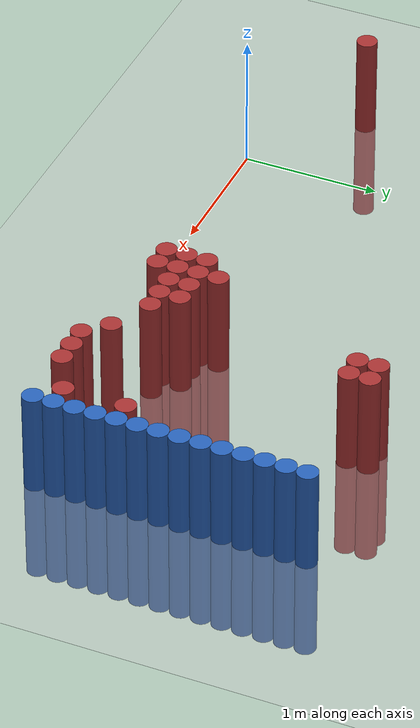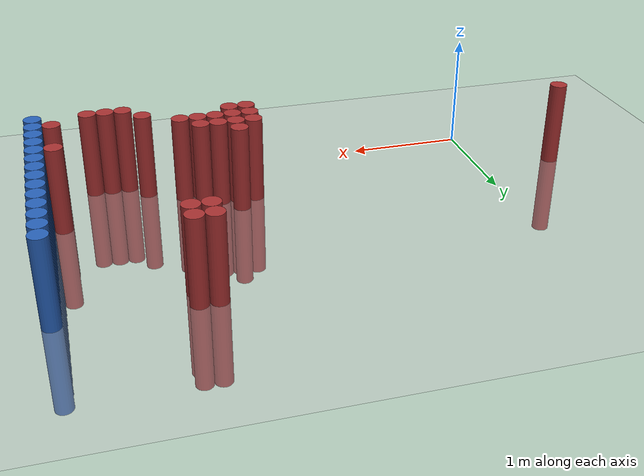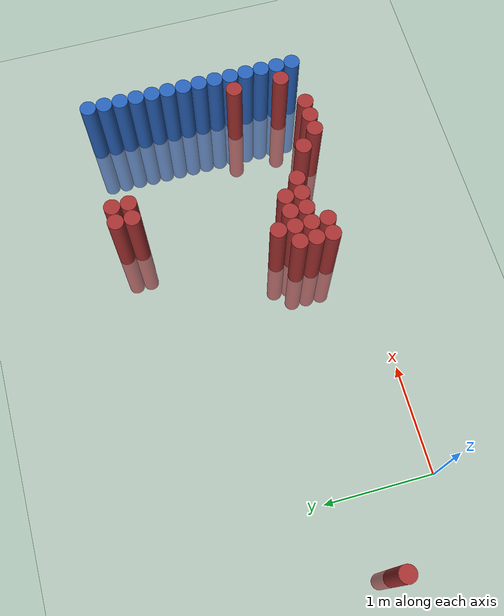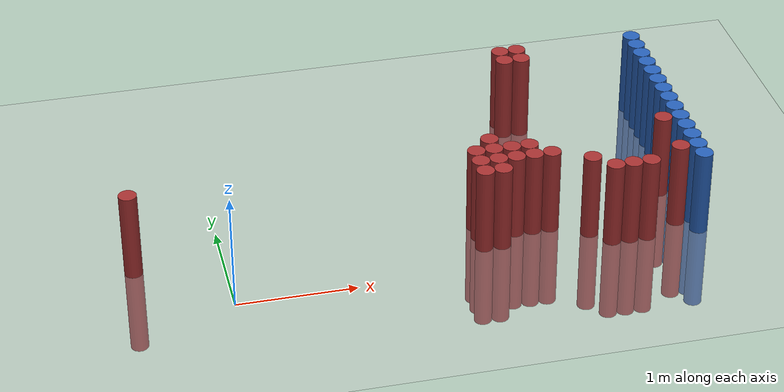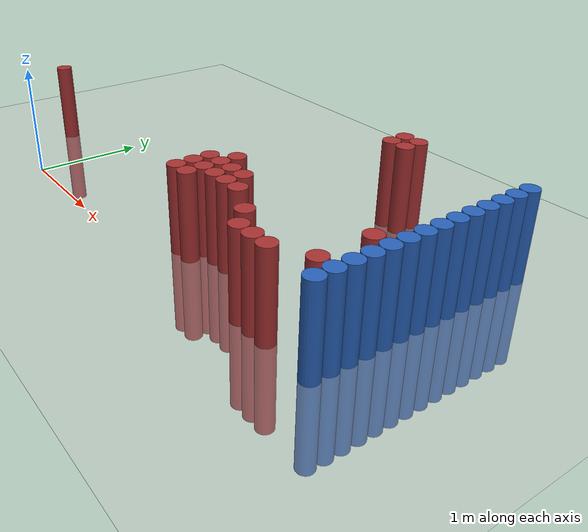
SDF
<sdf version="1.6">
 <world name="default">
  <model name="ground_plane">
   <static>1</static>
   <link name="link">
    <collision name="collision">
     <geometry><plane><normal>0 0 1</normal><size>100 100</size></plane></geometry>
     <surface><friction><ode><mu>100</mu><mu2>50</mu2></ode></friction></surface>
    </collision>
    <visual name="visual">
     <cast_shadows>0</cast_shadows>
     <geometry><plane><normal>0 0 1</normal><size>100 100</size></plane></geometry>
     <material>
      <script><uri>file://media/materials/scripts/gazebo.material</uri><name>Gazebo/Grey</name></script>
     </material>
    </visual>
   </link>
  </model>
  <model name="unit_cylinder_118">
   <static>1</static>
   <pose>3.925000 0.325000 0.000000 0.000000 0.000000 0.000000</pose>
   <link name="link">
    <inertial>
     <mass>1</mass>
     <inertia><ixx>0.145833</ixx><ixy>0</ixy><ixz>0</ixz><iyy>0.145833</iyy><iyz>0</iyz><izz>0.125</izz></inertia>
    </inertial>
    <collision name="collision">
     <geometry><cylinder><radius>0.075000</radius><length>1.5</length></cylinder></geometry>
    </collision>
    <visual name="visual">
     <geometry><cylinder><radius>0.075000</radius><length>1.5</length></cylinder></geometry>
     <material>
      <ambient>0.152000 0.379000 0.720000 1</ambient>
      <diffuse>0.152000 0.379000 0.720000 1</diffuse>
     </material>
     <material>
      <script><name>Gazebo/Grey</name><uri>file://media/materials/scripts/gazebo.material</uri></script>
     </material>
    </visual>
   </link>
  </model>
  <model name="unit_cylinder_120">
   <static>1</static>
   <pose>3.925000 0.475000 0.000000 0.000000 0.000000 0.000000</pose>
   <link name="link">
    <inertial>
     <mass>1</mass>
     <inertia><ixx>0.145833</ixx><ixy>0</ixy><ixz>0</ixz><iyy>0.145833</iyy><iyz>0</iyz><izz>0.125</izz></inertia>
    </inertial>
    <collision name="collision">
     <geometry><cylinder><radius>0.075000</radius><length>1.5</length></cylinder></geometry>
    </collision>
    <visual name="visual">
     <geometry><cylinder><radius>0.075000</radius><length>1.5</length></cylinder></geometry>
     <material>
      <ambient>0.152000 0.379000 0.720000 1</ambient>
      <diffuse>0.152000 0.379000 0.720000 1</diffuse>
     </material>
     <material>
      <script><name>Gazebo/Grey</name><uri>file://media/materials/scripts/gazebo.material</uri></script>
     </material>
    </visual>
   </link>
  </model>
  <model name="unit_cylinder_122">
   <static>1</static>
   <pose>3.925000 0.625000 0.000000 0.000000 0.000000 0.000000</pose>
   <link name="link">
    <inertial>
     <mass>1</mass>
     <inertia><ixx>0.145833</ixx><ixy>0</ixy><ixz>0</ixz><iyy>0.145833</iyy><iyz>0</iyz><izz>0.125</izz></inertia>
    </inertial>
    <collision name="collision">
     <geometry><cylinder><radius>0.075000</radius><length>1.5</length></cylinder></geometry>
    </collision>
    <visual name="visual">
     <geometry><cylinder><radius>0.075000</radius><length>1.5</length></cylinder></geometry>
     <material>
      <ambient>0.152000 0.379000 0.720000 1</ambient>
      <diffuse>0.152000 0.379000 0.720000 1</diffuse>
     </material>
     <material>
      <script><name>Gazebo/Grey</name><uri>file://media/materials/scripts/gazebo.material</uri></script>
     </material>
    </visual>
   </link>
  </model>
  <model name="unit_cylinder_124">
   <static>1</static>
   <pose>3.925000 0.775000 0.000000 0.000000 0.000000 0.000000</pose>
   <link name="link">
    <inertial>
     <mass>1</mass>
     <inertia><ixx>0.145833</ixx><ixy>0</ixy><ixz>0</ixz><iyy>0.145833</iyy><iyz>0</iyz><izz>0.125</izz></inertia>
    </inertial>
    <collision name="collision">
     <geometry><cylinder><radius>0.075000</radius><length>1.5</length></cylinder></geometry>
    </collision>
    <visual name="visual">
     <geometry><cylinder><radius>0.075000</radius><length>1.5</length></cylinder></geometry>
     <material>
      <ambient>0.152000 0.379000 0.720000 1</ambient>
      <diffuse>0.152000 0.379000 0.720000 1</diffuse>
     </material>
     <material>
      <script><name>Gazebo/Grey</name><uri>file://media/materials/scripts/gazebo.material</uri></script>
     </material>
    </visual>
   </link>
  </model>
  <model name="unit_cylinder_126">
   <static>1</static>
   <pose>3.925000 0.925000 0.000000 0.000000 0.000000 0.000000</pose>
   <link name="link">
    <inertial>
     <mass>1</mass>
     <inertia><ixx>0.145833</ixx><ixy>0</ixy><ixz>0</ixz><iyy>0.145833</iyy><iyz>0</iyz><izz>0.125</izz></inertia>
    </inertial>
    <collision name="collision">
     <geometry><cylinder><radius>0.075000</radius><length>1.5</length></cylinder></geometry>
    </collision>
    <visual name="visual">
     <geometry><cylinder><radius>0.075000</radius><length>1.5</length></cylinder></geometry>
     <material>
      <ambient>0.152000 0.379000 0.720000 1</ambient>
      <diffuse>0.152000 0.379000 0.720000 1</diffuse>
     </material>
     <material>
      <script><name>Gazebo/Grey</name><uri>file://media/materials/scripts/gazebo.material</uri></script>
     </material>
    </visual>
   </link>
  </model>
  <model name="unit_cylinder_128">
   <static>1</static>
   <pose>3.925000 1.075000 0.000000 0.000000 0.000000 0.000000</pose>
   <link name="link">
    <inertial>
     <mass>1</mass>
     <inertia><ixx>0.145833</ixx><ixy>0</ixy><ixz>0</ixz><iyy>0.145833</iyy><iyz>0</iyz><izz>0.125</izz></inertia>
    </inertial>
    <collision name="collision">
     <geometry><cylinder><radius>0.075000</radius><length>1.5</length></cylinder></geometry>
    </collision>
    <visual name="visual">
     <geometry><cylinder><radius>0.075000</radius><length>1.5</length></cylinder></geometry>
     <material>
      <ambient>0.152000 0.379000 0.720000 1</ambient>
      <diffuse>0.152000 0.379000 0.720000 1</diffuse>
     </material>
     <material>
      <script><name>Gazebo/Grey</name><uri>file://media/materials/scripts/gazebo.material</uri></script>
     </material>
    </visual>
   </link>
  </model>
  <model name="unit_cylinder_130">
   <static>1</static>
   <pose>3.925000 1.225000 0.000000 0.000000 0.000000 0.000000</pose>
   <link name="link">
    <inertial>
     <mass>1</mass>
     <inertia><ixx>0.145833</ixx><ixy>0</ixy><ixz>0</ixz><iyy>0.145833</iyy><iyz>0</iyz><izz>0.125</izz></inertia>
    </inertial>
    <collision name="collision">
     <geometry><cylinder><radius>0.075000</radius><length>1.5</length></cylinder></geometry>
    </collision>
    <visual name="visual">
     <geometry><cylinder><radius>0.075000</radius><length>1.5</length></cylinder></geometry>
     <material>
      <ambient>0.152000 0.379000 0.720000 1</ambient>
      <diffuse>0.152000 0.379000 0.720000 1</diffuse>
     </material>
     <material>
      <script><name>Gazebo/Grey</name><uri>file://media/materials/scripts/gazebo.material</uri></script>
     </material>
    </visual>
   </link>
  </model>
  <model name="unit_cylinder_132">
   <static>1</static>
   <pose>3.925000 1.375000 0.000000 0.000000 0.000000 0.000000</pose>
   <link name="link">
    <inertial>
     <mass>1</mass>
     <inertia><ixx>0.145833</ixx><ixy>0</ixy><ixz>0</ixz><iyy>0.145833</iyy><iyz>0</iyz><izz>0.125</izz></inertia>
    </inertial>
    <collision name="collision">
     <geometry><cylinder><radius>0.075000</radius><length>1.5</length></cylinder></geometry>
    </collision>
    <visual name="visual">
     <geometry><cylinder><radius>0.075000</radius><length>1.5</length></cylinder></geometry>
     <material>
      <ambient>0.152000 0.379000 0.720000 1</ambient>
      <diffuse>0.152000 0.379000 0.720000 1</diffuse>
     </material>
     <material>
      <script><name>Gazebo/Grey</name><uri>file://media/materials/scripts/gazebo.material</uri></script>
     </material>
    </visual>
   </link>
  </model>
  <model name="unit_cylinder_134">
   <static>1</static>
   <pose>3.925000 1.525000 0.000000 0.000000 0.000000 0.000000</pose>
   <link name="link">
    <inertial>
     <mass>1</mass>
     <inertia><ixx>0.145833</ixx><ixy>0</ixy><ixz>0</ixz><iyy>0.145833</iyy><iyz>0</iyz><izz>0.125</izz></inertia>
    </inertial>
    <collision name="collision">
     <geometry><cylinder><radius>0.075000</radius><length>1.5</length></cylinder></geometry>
    </collision>
    <visual name="visual">
     <geometry><cylinder><radius>0.075000</radius><length>1.5</length></cylinder></geometry>
     <material>
      <ambient>0.152000 0.379000 0.720000 1</ambient>
      <diffuse>0.152000 0.379000 0.720000 1</diffuse>
     </material>
     <material>
      <script><name>Gazebo/Grey</name><uri>file://media/materials/scripts/gazebo.material</uri></script>
     </material>
    </visual>
   </link>
  </model>
  <model name="unit_cylinder_136">
   <static>1</static>
   <pose>3.925000 1.675000 0.000000 0.000000 0.000000 0.000000</pose>
   <link name="link">
    <inertial>
     <mass>1</mass>
     <inertia><ixx>0.145833</ixx><ixy>0</ixy><ixz>0</ixz><iyy>0.145833</iyy><iyz>0</iyz><izz>0.125</izz></inertia>
    </inertial>
    <collision name="collision">
     <geometry><cylinder><radius>0.075000</radius><length>1.5</length></cylinder></geometry>
    </collision>
    <visual name="visual">
     <geometry><cylinder><radius>0.075000</radius><length>1.5</length></cylinder></geometry>
     <material>
      <ambient>0.152000 0.379000 0.720000 1</ambient>
      <diffuse>0.152000 0.379000 0.720000 1</diffuse>
     </material>
     <material>
      <script><name>Gazebo/Grey</name><uri>file://media/materials/scripts/gazebo.material</uri></script>
     </material>
    </visual>
   </link>
  </model>
  <model name="unit_cylinder_138">
   <static>1</static>
   <pose>3.925000 1.825000 0.000000 0.000000 0.000000 0.000000</pose>
   <link name="link">
    <inertial>
     <mass>1</mass>
     <inertia><ixx>0.145833</ixx><ixy>0</ixy><ixz>0</ixz><iyy>0.145833</iyy><iyz>0</iyz><izz>0.125</izz></inertia>
    </inertial>
    <collision name="collision">
     <geometry><cylinder><radius>0.075000</radius><length>1.5</length></cylinder></geometry>
    </collision>
    <visual name="visual">
     <geometry><cylinder><radius>0.075000</radius><length>1.5</length></cylinder></geometry>
     <material>
      <ambient>0.152000 0.379000 0.720000 1</ambient>
      <diffuse>0.152000 0.379000 0.720000 1</diffuse>
     </material>
     <material>
      <script><name>Gazebo/Grey</name><uri>file://media/materials/scripts/gazebo.material</uri></script>
     </material>
    </visual>
   </link>
  </model>
  <model name="unit_cylinder_140">
   <static>1</static>
   <pose>3.925000 1.975000 0.000000 0.000000 0.000000 0.000000</pose>
   <link name="link">
    <inertial>
     <mass>1</mass>
     <inertia><ixx>0.145833</ixx><ixy>0</ixy><ixz>0</ixz><iyy>0.145833</iyy><iyz>0</iyz><izz>0.125</izz></inertia>
    </inertial>
    <collision name="collision">
     <geometry><cylinder><radius>0.075000</radius><length>1.5</length></cylinder></geometry>
    </collision>
    <visual name="visual">
     <geometry><cylinder><radius>0.075000</radius><length>1.5</length></cylinder></geometry>
     <material>
      <ambient>0.152000 0.379000 0.720000 1</ambient>
      <diffuse>0.152000 0.379000 0.720000 1</diffuse>
     </material>
     <material>
      <script><name>Gazebo/Grey</name><uri>file://media/materials/scripts/gazebo.material</uri></script>
     </material>
    </visual>
   </link>
  </model>
  <model name="unit_cylinder_142">
   <static>1</static>
   <pose>3.925000 2.125000 0.000000 0.000000 0.000000 0.000000</pose>
   <link name="link">
    <inertial>
     <mass>1</mass>
     <inertia><ixx>0.145833</ixx><ixy>0</ixy><ixz>0</ixz><iyy>0.145833</iyy><iyz>0</iyz><izz>0.125</izz></inertia>
    </inertial>
    <collision name="collision">
     <geometry><cylinder><radius>0.075000</radius><length>1.5</length></cylinder></geometry>
    </collision>
    <visual name="visual">
     <geometry><cylinder><radius>0.075000</radius><length>1.5</length></cylinder></geometry>
     <material>
      <ambient>0.152000 0.379000 0.720000 1</ambient>
      <diffuse>0.152000 0.379000 0.720000 1</diffuse>
     </material>
     <material>
      <script><name>Gazebo/Grey</name><uri>file://media/materials/scripts/gazebo.material</uri></script>
     </material>
    </visual>
   </link>
  </model>
  <model name="unit_cylinder_303">
   <static>1</static>
   <pose>-0.725000 0.625000 0.000000 0.000000 0.000000 0.000000</pose>
   <link name="link">
    <inertial>
     <mass>1</mass>
     <inertia><ixx>0.145833</ixx><ixy>0</ixy><ixz>0</ixz><iyy>0.145833</iyy><iyz>0</iyz><izz>0.125</izz></inertia>
    </inertial>
    <collision name="collision">
     <geometry><cylinder><radius>0.075000</radius><length>1.5</length></cylinder></geometry>
    </collision>
    <visual name="visual">
     <geometry><cylinder><radius>0.075000</radius><length>1.5</length></cylinder></geometry>
     <material>
      <ambient>0.648000 0.192000 0.192000 1</ambient>
      <diffuse>0.648000 0.192000 0.192000 1</diffuse>
     </material>
     <material>
      <script><name>Gazebo/Grey</name><uri>file://media/materials/scripts/gazebo.material</uri></script>
     </material>
    </visual>
   </link>
  </model>
  <model name="unit_cylinder_335">
   <static>1</static>
   <pose>2.125000 0.325000 0.000000 0.000000 0.000000 0.000000</pose>
   <link name="link">
    <inertial>
     <mass>1</mass>
     <inertia><ixx>0.145833</ixx><ixy>0</ixy><ixz>0</ixz><iyy>0.145833</iyy><iyz>0</iyz><izz>0.125</izz></inertia>
    </inertial>
    <collision name="collision">
     <geometry><cylinder><radius>0.075000</radius><length>1.5</length></cylinder></geometry>
    </collision>
    <visual name="visual">
     <geometry><cylinder><radius>0.075000</radius><length>1.5</length></cylinder></geometry>
     <material>
      <ambient>0.648000 0.192000 0.192000 1</ambient>
      <diffuse>0.648000 0.192000 0.192000 1</diffuse>
     </material>
     <material>
      <script><name>Gazebo/Grey</name><uri>file://media/materials/scripts/gazebo.material</uri></script>
     </material>
    </visual>
   </link>
  </model>
  <model name="unit_cylinder_336">
   <static>1</static>
   <pose>2.125000 0.475000 0.000000 0.000000 0.000000 0.000000</pose>
   <link name="link">
    <inertial>
     <mass>1</mass>
     <inertia><ixx>0.145833</ixx><ixy>0</ixy><ixz>0</ixz><iyy>0.145833</iyy><iyz>0</iyz><izz>0.125</izz></inertia>
    </inertial>
    <collision name="collision">
     <geometry><cylinder><radius>0.075000</radius><length>1.5</length></cylinder></geometry>
    </collision>
    <visual name="visual">
     <geometry><cylinder><radius>0.075000</radius><length>1.5</length></cylinder></geometry>
     <material>
      <ambient>0.648000 0.192000 0.192000 1</ambient>
      <diffuse>0.648000 0.192000 0.192000 1</diffuse>
     </material>
     <material>
      <script><name>Gazebo/Grey</name><uri>file://media/materials/scripts/gazebo.material</uri></script>
     </material>
    </visual>
   </link>
  </model>
  <model name="unit_cylinder_337">
   <static>1</static>
   <pose>2.125000 0.625000 0.000000 0.000000 0.000000 0.000000</pose>
   <link name="link">
    <inertial>
     <mass>1</mass>
     <inertia><ixx>0.145833</ixx><ixy>0</ixy><ixz>0</ixz><iyy>0.145833</iyy><iyz>0</iyz><izz>0.125</izz></inertia>
    </inertial>
    <collision name="collision">
     <geometry><cylinder><radius>0.075000</radius><length>1.5</length></cylinder></geometry>
    </collision>
    <visual name="visual">
     <geometry><cylinder><radius>0.075000</radius><length>1.5</length></cylinder></geometry>
     <material>
      <ambient>0.648000 0.192000 0.192000 1</ambient>
      <diffuse>0.648000 0.192000 0.192000 1</diffuse>
     </material>
     <material>
      <script><name>Gazebo/Grey</name><uri>file://media/materials/scripts/gazebo.material</uri></script>
     </material>
    </visual>
   </link>
  </model>
  <model name="unit_cylinder_344">
   <static>1</static>
   <pose>2.275000 0.325000 0.000000 0.000000 0.000000 0.000000</pose>
   <link name="link">
    <inertial>
     <mass>1</mass>
     <inertia><ixx>0.145833</ixx><ixy>0</ixy><ixz>0</ixz><iyy>0.145833</iyy><iyz>0</iyz><izz>0.125</izz></inertia>
    </inertial>
    <collision name="collision">
     <geometry><cylinder><radius>0.075000</radius><length>1.5</length></cylinder></geometry>
    </collision>
    <visual name="visual">
     <geometry><cylinder><radius>0.075000</radius><length>1.5</length></cylinder></geometry>
     <material>
      <ambient>0.648000 0.192000 0.192000 1</ambient>
      <diffuse>0.648000 0.192000 0.192000 1</diffuse>
     </material>
     <material>
      <script><name>Gazebo/Grey</name><uri>file://media/materials/scripts/gazebo.material</uri></script>
     </material>
    </visual>
   </link>
  </model>
  <model name="unit_cylinder_345">
   <static>1</static>
   <pose>2.275000 0.475000 0.000000 0.000000 0.000000 0.000000</pose>
   <link name="link">
    <inertial>
     <mass>1</mass>
     <inertia><ixx>0.145833</ixx><ixy>0</ixy><ixz>0</ixz><iyy>0.145833</iyy><iyz>0</iyz><izz>0.125</izz></inertia>
    </inertial>
    <collision name="collision">
     <geometry><cylinder><radius>0.075000</radius><length>1.5</length></cylinder></geometry>
    </collision>
    <visual name="visual">
     <geometry><cylinder><radius>0.075000</radius><length>1.5</length></cylinder></geometry>
     <material>
      <ambient>0.648000 0.192000 0.192000 1</ambient>
      <diffuse>0.648000 0.192000 0.192000 1</diffuse>
     </material>
     <material>
      <script><name>Gazebo/Grey</name><uri>file://media/materials/scripts/gazebo.material</uri></script>
     </material>
    </visual>
   </link>
  </model>
  <model name="unit_cylinder_346">
   <static>1</static>
   <pose>2.275000 0.625000 0.000000 0.000000 0.000000 0.000000</pose>
   <link name="link">
    <inertial>
     <mass>1</mass>
     <inertia><ixx>0.145833</ixx><ixy>0</ixy><ixz>0</ixz><iyy>0.145833</iyy><iyz>0</iyz><izz>0.125</izz></inertia>
    </inertial>
    <collision name="collision">
     <geometry><cylinder><radius>0.075000</radius><length>1.5</length></cylinder></geometry>
    </collision>
    <visual name="visual">
     <geometry><cylinder><radius>0.075000</radius><length>1.5</length></cylinder></geometry>
     <material>
      <ambient>0.648000 0.192000 0.192000 1</ambient>
      <diffuse>0.648000 0.192000 0.192000 1</diffuse>
     </material>
     <material>
      <script><name>Gazebo/Grey</name><uri>file://media/materials/scripts/gazebo.material</uri></script>
     </material>
    </visual>
   </link>
  </model>
  <model name="unit_cylinder_347">
   <static>1</static>
   <pose>2.275000 0.775000 0.000000 0.000000 0.000000 0.000000</pose>
   <link name="link">
    <inertial>
     <mass>1</mass>
     <inertia><ixx>0.145833</ixx><ixy>0</ixy><ixz>0</ixz><iyy>0.145833</iyy><iyz>0</iyz><izz>0.125</izz></inertia>
    </inertial>
    <collision name="collision">
     <geometry><cylinder><radius>0.075000</radius><length>1.5</length></cylinder></geometry>
    </collision>
    <visual name="visual">
     <geometry><cylinder><radius>0.075000</radius><length>1.5</length></cylinder></geometry>
     <material>
      <ambient>0.648000 0.192000 0.192000 1</ambient>
      <diffuse>0.648000 0.192000 0.192000 1</diffuse>
     </material>
     <material>
      <script><name>Gazebo/Grey</name><uri>file://media/materials/scripts/gazebo.material</uri></script>
     </material>
    </visual>
   </link>
  </model>
  <model name="unit_cylinder_353">
   <static>1</static>
   <pose>2.425000 0.475000 0.000000 0.000000 0.000000 0.000000</pose>
   <link name="link">
    <inertial>
     <mass>1</mass>
     <inertia><ixx>0.145833</ixx><ixy>0</ixy><ixz>0</ixz><iyy>0.145833</iyy><iyz>0</iyz><izz>0.125</izz></inertia>
    </inertial>
    <collision name="collision">
     <geometry><cylinder><radius>0.075000</radius><length>1.5</length></cylinder></geometry>
    </collision>
    <visual name="visual">
     <geometry><cylinder><radius>0.075000</radius><length>1.5</length></cylinder></geometry>
     <material>
      <ambient>0.648000 0.192000 0.192000 1</ambient>
      <diffuse>0.648000 0.192000 0.192000 1</diffuse>
     </material>
     <material>
      <script><name>Gazebo/Grey</name><uri>file://media/materials/scripts/gazebo.material</uri></script>
     </material>
    </visual>
   </link>
  </model>
  <model name="unit_cylinder_354">
   <static>1</static>
   <pose>2.425000 0.625000 0.000000 0.000000 0.000000 0.000000</pose>
   <link name="link">
    <inertial>
     <mass>1</mass>
     <inertia><ixx>0.145833</ixx><ixy>0</ixy><ixz>0</ixz><iyy>0.145833</iyy><iyz>0</iyz><izz>0.125</izz></inertia>
    </inertial>
    <collision name="collision">
     <geometry><cylinder><radius>0.075000</radius><length>1.5</length></cylinder></geometry>
    </collision>
    <visual name="visual">
     <geometry><cylinder><radius>0.075000</radius><length>1.5</length></cylinder></geometry>
     <material>
      <ambient>0.648000 0.192000 0.192000 1</ambient>
      <diffuse>0.648000 0.192000 0.192000 1</diffuse>
     </material>
     <material>
      <script><name>Gazebo/Grey</name><uri>file://media/materials/scripts/gazebo.material</uri></script>
     </material>
    </visual>
   </link>
  </model>
  <model name="unit_cylinder_356">
   <static>1</static>
   <pose>2.575000 0.475000 0.000000 0.000000 0.000000 0.000000</pose>
   <link name="link">
    <inertial>
     <mass>1</mass>
     <inertia><ixx>0.145833</ixx><ixy>0</ixy><ixz>0</ixz><iyy>0.145833</iyy><iyz>0</iyz><izz>0.125</izz></inertia>
    </inertial>
    <collision name="collision">
     <geometry><cylinder><radius>0.075000</radius><length>1.5</length></cylinder></geometry>
    </collision>
    <visual name="visual">
     <geometry><cylinder><radius>0.075000</radius><length>1.5</length></cylinder></geometry>
     <material>
      <ambient>0.648000 0.192000 0.192000 1</ambient>
      <diffuse>0.648000 0.192000 0.192000 1</diffuse>
     </material>
     <material>
      <script><name>Gazebo/Grey</name><uri>file://media/materials/scripts/gazebo.material</uri></script>
     </material>
    </visual>
   </link>
  </model>
  <model name="unit_cylinder_357">
   <static>1</static>
   <pose>2.575000 0.625000 0.000000 0.000000 0.000000 0.000000</pose>
   <link name="link">
    <inertial>
     <mass>1</mass>
     <inertia><ixx>0.145833</ixx><ixy>0</ixy><ixz>0</ixz><iyy>0.145833</iyy><iyz>0</iyz><izz>0.125</izz></inertia>
    </inertial>
    <collision name="collision">
     <geometry><cylinder><radius>0.075000</radius><length>1.5</length></cylinder></geometry>
    </collision>
    <visual name="visual">
     <geometry><cylinder><radius>0.075000</radius><length>1.5</length></cylinder></geometry>
     <material>
      <ambient>0.648000 0.192000 0.192000 1</ambient>
      <diffuse>0.648000 0.192000 0.192000 1</diffuse>
     </material>
     <material>
      <script><name>Gazebo/Grey</name><uri>file://media/materials/scripts/gazebo.material</uri></script>
     </material>
    </visual>
   </link>
  </model>
  <model name="unit_cylinder_360">
   <static>1</static>
   <pose>2.725000 0.475000 0.000000 0.000000 0.000000 0.000000</pose>
   <link name="link">
    <inertial>
     <mass>1</mass>
     <inertia><ixx>0.145833</ixx><ixy>0</ixy><ixz>0</ixz><iyy>0.145833</iyy><iyz>0</iyz><izz>0.125</izz></inertia>
    </inertial>
    <collision name="collision">
     <geometry><cylinder><radius>0.075000</radius><length>1.5</length></cylinder></geometry>
    </collision>
    <visual name="visual">
     <geometry><cylinder><radius>0.075000</radius><length>1.5</length></cylinder></geometry>
     <material>
      <ambient>0.648000 0.192000 0.192000 1</ambient>
      <diffuse>0.648000 0.192000 0.192000 1</diffuse>
     </material>
     <material>
      <script><name>Gazebo/Grey</name><uri>file://media/materials/scripts/gazebo.material</uri></script>
     </material>
    </visual>
   </link>
  </model>
  <model name="unit_cylinder_361">
   <static>1</static>
   <pose>2.725000 1.975000 0.000000 0.000000 0.000000 0.000000</pose>
   <link name="link">
    <inertial>
     <mass>1</mass>
     <inertia><ixx>0.145833</ixx><ixy>0</ixy><ixz>0</ixz><iyy>0.145833</iyy><iyz>0</iyz><izz>0.125</izz></inertia>
    </inertial>
    <collision name="collision">
     <geometry><cylinder><radius>0.075000</radius><length>1.5</length></cylinder></geometry>
    </collision>
    <visual name="visual">
     <geometry><cylinder><radius>0.075000</radius><length>1.5</length></cylinder></geometry>
     <material>
      <ambient>0.648000 0.192000 0.192000 1</ambient>
      <diffuse>0.648000 0.192000 0.192000 1</diffuse>
     </material>
     <material>
      <script><name>Gazebo/Grey</name><uri>file://media/materials/scripts/gazebo.material</uri></script>
     </material>
    </visual>
   </link>
  </model>
  <model name="unit_cylinder_362">
   <static>1</static>
   <pose>2.725000 2.125000 0.000000 0.000000 0.000000 0.000000</pose>
   <link name="link">
    <inertial>
     <mass>1</mass>
     <inertia><ixx>0.145833</ixx><ixy>0</ixy><ixz>0</ixz><iyy>0.145833</iyy><iyz>0</iyz><izz>0.125</izz></inertia>
    </inertial>
    <collision name="collision">
     <geometry><cylinder><radius>0.075000</radius><length>1.5</length></cylinder></geometry>
    </collision>
    <visual name="visual">
     <geometry><cylinder><radius>0.075000</radius><length>1.5</length></cylinder></geometry>
     <material>
      <ambient>0.648000 0.192000 0.192000 1</ambient>
      <diffuse>0.648000 0.192000 0.192000 1</diffuse>
     </material>
     <material>
      <script><name>Gazebo/Grey</name><uri>file://media/materials/scripts/gazebo.material</uri></script>
     </material>
    </visual>
   </link>
  </model>
  <model name="unit_cylinder_365">
   <static>1</static>
   <pose>2.875000 1.975000 0.000000 0.000000 0.000000 0.000000</pose>
   <link name="link">
    <inertial>
     <mass>1</mass>
     <inertia><ixx>0.145833</ixx><ixy>0</ixy><ixz>0</ixz><iyy>0.145833</iyy><iyz>0</iyz><izz>0.125</izz></inertia>
    </inertial>
    <collision name="collision">
     <geometry><cylinder><radius>0.075000</radius><length>1.5</length></cylinder></geometry>
    </collision>
    <visual name="visual">
     <geometry><cylinder><radius>0.075000</radius><length>1.5</length></cylinder></geometry>
     <material>
      <ambient>0.648000 0.192000 0.192000 1</ambient>
      <diffuse>0.648000 0.192000 0.192000 1</diffuse>
     </material>
     <material>
      <script><name>Gazebo/Grey</name><uri>file://media/materials/scripts/gazebo.material</uri></script>
     </material>
    </visual>
   </link>
  </model>
  <model name="unit_cylinder_366">
   <static>1</static>
   <pose>2.875000 2.125000 0.000000 0.000000 0.000000 0.000000</pose>
   <link name="link">
    <inertial>
     <mass>1</mass>
     <inertia><ixx>0.145833</ixx><ixy>0</ixy><ixz>0</ixz><iyy>0.145833</iyy><iyz>0</iyz><izz>0.125</izz></inertia>
    </inertial>
    <collision name="collision">
     <geometry><cylinder><radius>0.075000</radius><length>1.5</length></cylinder></geometry>
    </collision>
    <visual name="visual">
     <geometry><cylinder><radius>0.075000</radius><length>1.5</length></cylinder></geometry>
     <material>
      <ambient>0.648000 0.192000 0.192000 1</ambient>
      <diffuse>0.648000 0.192000 0.192000 1</diffuse>
     </material>
     <material>
      <script><name>Gazebo/Grey</name><uri>file://media/materials/scripts/gazebo.material</uri></script>
     </material>
    </visual>
   </link>
  </model>
  <model name="unit_cylinder_369">
   <static>1</static>
   <pose>3.025000 0.325000 0.000000 0.000000 0.000000 0.000000</pose>
   <link name="link">
    <inertial>
     <mass>1</mass>
     <inertia><ixx>0.145833</ixx><ixy>0</ixy><ixz>0</ixz><iyy>0.145833</iyy><iyz>0</iyz><izz>0.125</izz></inertia>
    </inertial>
    <collision name="collision">
     <geometry><cylinder><radius>0.075000</radius><length>1.5</length></cylinder></geometry>
    </collision>
    <visual name="visual">
     <geometry><cylinder><radius>0.075000</radius><length>1.5</length></cylinder></geometry>
     <material>
      <ambient>0.648000 0.192000 0.192000 1</ambient>
      <diffuse>0.648000 0.192000 0.192000 1</diffuse>
     </material>
     <material>
      <script><name>Gazebo/Grey</name><uri>file://media/materials/scripts/gazebo.material</uri></script>
     </material>
    </visual>
   </link>
  </model>
  <model name="unit_cylinder_372">
   <static>1</static>
   <pose>3.175000 0.175000 0.000000 0.000000 0.000000 0.000000</pose>
   <link name="link">
    <inertial>
     <mass>1</mass>
     <inertia><ixx>0.145833</ixx><ixy>0</ixy><ixz>0</ixz><iyy>0.145833</iyy><iyz>0</iyz><izz>0.125</izz></inertia>
    </inertial>
    <collision name="collision">
     <geometry><cylinder><radius>0.075000</radius><length>1.5</length></cylinder></geometry>
    </collision>
    <visual name="visual">
     <geometry><cylinder><radius>0.075000</radius><length>1.5</length></cylinder></geometry>
     <material>
      <ambient>0.648000 0.192000 0.192000 1</ambient>
      <diffuse>0.648000 0.192000 0.192000 1</diffuse>
     </material>
     <material>
      <script><name>Gazebo/Grey</name><uri>file://media/materials/scripts/gazebo.material</uri></script>
     </material>
    </visual>
   </link>
  </model>
  <model name="unit_cylinder_378">
   <static>1</static>
   <pose>3.325000 0.175000 0.000000 0.000000 0.000000 0.000000</pose>
   <link name="link">
    <inertial>
     <mass>1</mass>
     <inertia><ixx>0.145833</ixx><ixy>0</ixy><ixz>0</ixz><iyy>0.145833</iyy><iyz>0</iyz><izz>0.125</izz></inertia>
    </inertial>
    <collision name="collision">
     <geometry><cylinder><radius>0.075000</radius><length>1.5</length></cylinder></geometry>
    </collision>
    <visual name="visual">
     <geometry><cylinder><radius>0.075000</radius><length>1.5</length></cylinder></geometry>
     <material>
      <ambient>0.648000 0.192000 0.192000 1</ambient>
      <diffuse>0.648000 0.192000 0.192000 1</diffuse>
     </material>
     <material>
      <script><name>Gazebo/Grey</name><uri>file://media/materials/scripts/gazebo.material</uri></script>
     </material>
    </visual>
   </link>
  </model>
  <model name="unit_cylinder_383">
   <static>1</static>
   <pose>3.475000 0.175000 0.000000 0.000000 0.000000 0.000000</pose>
   <link name="link">
    <inertial>
     <mass>1</mass>
     <inertia><ixx>0.145833</ixx><ixy>0</ixy><ixz>0</ixz><iyy>0.145833</iyy><iyz>0</iyz><izz>0.125</izz></inertia>
    </inertial>
    <collision name="collision">
     <geometry><cylinder><radius>0.075000</radius><length>1.5</length></cylinder></geometry>
    </collision>
    <visual name="visual">
     <geometry><cylinder><radius>0.075000</radius><length>1.5</length></cylinder></geometry>
     <material>
      <ambient>0.648000 0.192000 0.192000 1</ambient>
      <diffuse>0.648000 0.192000 0.192000 1</diffuse>
     </material>
     <material>
      <script><name>Gazebo/Grey</name><uri>file://media/materials/scripts/gazebo.material</uri></script>
     </material>
    </visual>
   </link>
  </model>
  <model name="unit_cylinder_389">
   <static>1</static>
   <pose>3.775000 0.325000 0.000000 0.000000 0.000000 0.000000</pose>
   <link name="link">
    <inertial>
     <mass>1</mass>
     <inertia><ixx>0.145833</ixx><ixy>0</ixy><ixz>0</ixz><iyy>0.145833</iyy><iyz>0</iyz><izz>0.125</izz></inertia>
    </inertial>
    <collision name="collision">
     <geometry><cylinder><radius>0.075000</radius><length>1.5</length></cylinder></geometry>
    </collision>
    <visual name="visual">
     <geometry><cylinder><radius>0.075000</radius><length>1.5</length></cylinder></geometry>
     <material>
      <ambient>0.648000 0.192000 0.192000 1</ambient>
      <diffuse>0.648000 0.192000 0.192000 1</diffuse>
     </material>
     <material>
      <script><name>Gazebo/Grey</name><uri>file://media/materials/scripts/gazebo.material</uri></script>
     </material>
    </visual>
   </link>
  </model>
  <model name="unit_cylinder_390">
   <static>1</static>
   <pose>3.775000 0.775000 0.000000 0.000000 0.000000 0.000000</pose>
   <link name="link">
    <inertial>
     <mass>1</mass>
     <inertia><ixx>0.145833</ixx><ixy>0</ixy><ixz>0</ixz><iyy>0.145833</iyy><iyz>0</iyz><izz>0.125</izz></inertia>
    </inertial>
    <collision name="collision">
     <geometry><cylinder><radius>0.075000</radius><length>1.5</length></cylinder></geometry>
    </collision>
    <visual name="visual">
     <geometry><cylinder><radius>0.075000</radius><length>1.5</length></cylinder></geometry>
     <material>
      <ambient>0.648000 0.192000 0.192000 1</ambient>
      <diffuse>0.648000 0.192000 0.192000 1</diffuse>
     </material>
     <material>
      <script><name>Gazebo/Grey</name><uri>file://media/materials/scripts/gazebo.material</uri></script>
     </material>
    </visual>
   </link>
  </model>
  <model name="unit_cylinder_412">
   <static>1</static>
   <pose>3.925000 0.175000 0.000000 0.000000 0.000000 0.000000</pose>
   <link name="link">
    <inertial>
     <mass>1</mass>
     <inertia><ixx>0.145833</ixx><ixy>0</ixy><ixz>0</ixz><iyy>0.145833</iyy><iyz>0</iyz><izz>0.125</izz></inertia>
    </inertial>
    <collision name="collision">
     <geometry><cylinder><radius>0.075000</radius><length>1.5</length></cylinder></geometry>
    </collision>
    <visual name="visual">
     <geometry><cylinder><radius>0.075000</radius><length>1.5</length></cylinder></geometry>
     <material>
      <ambient>0.152000 0.379000 0.720000 1</ambient>
      <diffuse>0.152000 0.379000 0.720000 1</diffuse>
     </material>
     <material>
      <script><name>Gazebo/Grey</name><uri>file://media/materials/scripts/gazebo.material</uri></script>
     </material>
    </visual>
   </link>
  </model>
  <model name="unit_cylinder_413">
   <static>1</static>
   <pose>3.925000 0.325000 0.000000 0.000000 0.000000 0.000000</pose>
   <link name="link">
    <inertial>
     <mass>1</mass>
     <inertia><ixx>0.145833</ixx><ixy>0</ixy><ixz>0</ixz><iyy>0.145833</iyy><iyz>0</iyz><izz>0.125</izz></inertia>
    </inertial>
    <collision name="collision">
     <geometry><cylinder><radius>0.075000</radius><length>1.5</length></cylinder></geometry>
    </collision>
    <visual name="visual">
     <geometry><cylinder><radius>0.075000</radius><length>1.5</length></cylinder></geometry>
     <material>
      <ambient>0.152000 0.379000 0.720000 1</ambient>
      <diffuse>0.152000 0.379000 0.720000 1</diffuse>
     </material>
     <material>
      <script><name>Gazebo/Grey</name><uri>file://media/materials/scripts/gazebo.material</uri></script>
     </material>
    </visual>
   </link>
  </model>
  <model name="unit_cylinder_414">
   <static>1</static>
   <pose>3.925000 0.475000 0.000000 0.000000 0.000000 0.000000</pose>
   <link name="link">
    <inertial>
     <mass>1</mass>
     <inertia><ixx>0.145833</ixx><ixy>0</ixy><ixz>0</ixz><iyy>0.145833</iyy><iyz>0</iyz><izz>0.125</izz></inertia>
    </inertial>
    <collision name="collision">
     <geometry><cylinder><radius>0.075000</radius><length>1.5</length></cylinder></geometry>
    </collision>
    <visual name="visual">
     <geometry><cylinder><radius>0.075000</radius><length>1.5</length></cylinder></geometry>
     <material>
      <ambient>0.152000 0.379000 0.720000 1</ambient>
      <diffuse>0.152000 0.379000 0.720000 1</diffuse>
     </material>
     <material>
      <script><name>Gazebo/Grey</name><uri>file://media/materials/scripts/gazebo.material</uri></script>
     </material>
    </visual>
   </link>
  </model>
  <model name="unit_cylinder_415">
   <static>1</static>
   <pose>3.925000 0.625000 0.000000 0.000000 0.000000 0.000000</pose>
   <link name="link">
    <inertial>
     <mass>1</mass>
     <inertia><ixx>0.145833</ixx><ixy>0</ixy><ixz>0</ixz><iyy>0.145833</iyy><iyz>0</iyz><izz>0.125</izz></inertia>
    </inertial>
    <collision name="collision">
     <geometry><cylinder><radius>0.075000</radius><length>1.5</length></cylinder></geometry>
    </collision>
    <visual name="visual">
     <geometry><cylinder><radius>0.075000</radius><length>1.5</length></cylinder></geometry>
     <material>
      <ambient>0.152000 0.379000 0.720000 1</ambient>
      <diffuse>0.152000 0.379000 0.720000 1</diffuse>
     </material>
     <material>
      <script><name>Gazebo/Grey</name><uri>file://media/materials/scripts/gazebo.material</uri></script>
     </material>
    </visual>
   </link>
  </model>
  <model name="unit_cylinder_416">
   <static>1</static>
   <pose>3.925000 0.775000 0.000000 0.000000 0.000000 0.000000</pose>
   <link name="link">
    <inertial>
     <mass>1</mass>
     <inertia><ixx>0.145833</ixx><ixy>0</ixy><ixz>0</ixz><iyy>0.145833</iyy><iyz>0</iyz><izz>0.125</izz></inertia>
    </inertial>
    <collision name="collision">
     <geometry><cylinder><radius>0.075000</radius><length>1.5</length></cylinder></geometry>
    </collision>
    <visual name="visual">
     <geometry><cylinder><radius>0.075000</radius><length>1.5</length></cylinder></geometry>
     <material>
      <ambient>0.152000 0.379000 0.720000 1</ambient>
      <diffuse>0.152000 0.379000 0.720000 1</diffuse>
     </material>
     <material>
      <script><name>Gazebo/Grey</name><uri>file://media/materials/scripts/gazebo.material</uri></script>
     </material>
    </visual>
   </link>
  </model>
  <model name="unit_cylinder_417">
   <static>1</static>
   <pose>3.925000 0.925000 0.000000 0.000000 0.000000 0.000000</pose>
   <link name="link">
    <inertial>
     <mass>1</mass>
     <inertia><ixx>0.145833</ixx><ixy>0</ixy><ixz>0</ixz><iyy>0.145833</iyy><iyz>0</iyz><izz>0.125</izz></inertia>
    </inertial>
    <collision name="collision">
     <geometry><cylinder><radius>0.075000</radius><length>1.5</length></cylinder></geometry>
    </collision>
    <visual name="visual">
     <geometry><cylinder><radius>0.075000</radius><length>1.5</length></cylinder></geometry>
     <material>
      <ambient>0.152000 0.379000 0.720000 1</ambient>
      <diffuse>0.152000 0.379000 0.720000 1</diffuse>
     </material>
     <material>
      <script><name>Gazebo/Grey</name><uri>file://media/materials/scripts/gazebo.material</uri></script>
     </material>
    </visual>
   </link>
  </model>
  <model name="unit_cylinder_418">
   <static>1</static>
   <pose>3.925000 1.075000 0.000000 0.000000 0.000000 0.000000</pose>
   <link name="link">
    <inertial>
     <mass>1</mass>
     <inertia><ixx>0.145833</ixx><ixy>0</ixy><ixz>0</ixz><iyy>0.145833</iyy><iyz>0</iyz><izz>0.125</izz></inertia>
    </inertial>
    <collision name="collision">
     <geometry><cylinder><radius>0.075000</radius><length>1.5</length></cylinder></geometry>
    </collision>
    <visual name="visual">
     <geometry><cylinder><radius>0.075000</radius><length>1.5</length></cylinder></geometry>
     <material>
      <ambient>0.152000 0.379000 0.720000 1</ambient>
      <diffuse>0.152000 0.379000 0.720000 1</diffuse>
     </material>
     <material>
      <script><name>Gazebo/Grey</name><uri>file://media/materials/scripts/gazebo.material</uri></script>
     </material>
    </visual>
   </link>
  </model>
  <model name="unit_cylinder_419">
   <static>1</static>
   <pose>3.925000 1.225000 0.000000 0.000000 0.000000 0.000000</pose>
   <link name="link">
    <inertial>
     <mass>1</mass>
     <inertia><ixx>0.145833</ixx><ixy>0</ixy><ixz>0</ixz><iyy>0.145833</iyy><iyz>0</iyz><izz>0.125</izz></inertia>
    </inertial>
    <collision name="collision">
     <geometry><cylinder><radius>0.075000</radius><length>1.5</length></cylinder></geometry>
    </collision>
    <visual name="visual">
     <geometry><cylinder><radius>0.075000</radius><length>1.5</length></cylinder></geometry>
     <material>
      <ambient>0.152000 0.379000 0.720000 1</ambient>
      <diffuse>0.152000 0.379000 0.720000 1</diffuse>
     </material>
     <material>
      <script><name>Gazebo/Grey</name><uri>file://media/materials/scripts/gazebo.material</uri></script>
     </material>
    </visual>
   </link>
  </model>
  <model name="unit_cylinder_420">
   <static>1</static>
   <pose>3.925000 1.375000 0.000000 0.000000 0.000000 0.000000</pose>
   <link name="link">
    <inertial>
     <mass>1</mass>
     <inertia><ixx>0.145833</ixx><ixy>0</ixy><ixz>0</ixz><iyy>0.145833</iyy><iyz>0</iyz><izz>0.125</izz></inertia>
    </inertial>
    <collision name="collision">
     <geometry><cylinder><radius>0.075000</radius><length>1.5</length></cylinder></geometry>
    </collision>
    <visual name="visual">
     <geometry><cylinder><radius>0.075000</radius><length>1.5</length></cylinder></geometry>
     <material>
      <ambient>0.152000 0.379000 0.720000 1</ambient>
      <diffuse>0.152000 0.379000 0.720000 1</diffuse>
     </material>
     <material>
      <script><name>Gazebo/Grey</name><uri>file://media/materials/scripts/gazebo.material</uri></script>
     </material>
    </visual>
   </link>
  </model>
  <model name="unit_cylinder_421">
   <static>1</static>
   <pose>3.925000 1.525000 0.000000 0.000000 0.000000 0.000000</pose>
   <link name="link">
    <inertial>
     <mass>1</mass>
     <inertia><ixx>0.145833</ixx><ixy>0</ixy><ixz>0</ixz><iyy>0.145833</iyy><iyz>0</iyz><izz>0.125</izz></inertia>
    </inertial>
    <collision name="collision">
     <geometry><cylinder><radius>0.075000</radius><length>1.5</length></cylinder></geometry>
    </collision>
    <visual name="visual">
     <geometry><cylinder><radius>0.075000</radius><length>1.5</length></cylinder></geometry>
     <material>
      <ambient>0.152000 0.379000 0.720000 1</ambient>
      <diffuse>0.152000 0.379000 0.720000 1</diffuse>
     </material>
     <material>
      <script><name>Gazebo/Grey</name><uri>file://media/materials/scripts/gazebo.material</uri></script>
     </material>
    </visual>
   </link>
  </model>
  <model name="unit_cylinder_422">
   <static>1</static>
   <pose>3.925000 1.675000 0.000000 0.000000 0.000000 0.000000</pose>
   <link name="link">
    <inertial>
     <mass>1</mass>
     <inertia><ixx>0.145833</ixx><ixy>0</ixy><ixz>0</ixz><iyy>0.145833</iyy><iyz>0</iyz><izz>0.125</izz></inertia>
    </inertial>
    <collision name="collision">
     <geometry><cylinder><radius>0.075000</radius><length>1.5</length></cylinder></geometry>
    </collision>
    <visual name="visual">
     <geometry><cylinder><radius>0.075000</radius><length>1.5</length></cylinder></geometry>
     <material>
      <ambient>0.152000 0.379000 0.720000 1</ambient>
      <diffuse>0.152000 0.379000 0.720000 1</diffuse>
     </material>
     <material>
      <script><name>Gazebo/Grey</name><uri>file://media/materials/scripts/gazebo.material</uri></script>
     </material>
    </visual>
   </link>
  </model>
  <model name="unit_cylinder_423">
   <static>1</static>
   <pose>3.925000 1.825000 0.000000 0.000000 0.000000 0.000000</pose>
   <link name="link">
    <inertial>
     <mass>1</mass>
     <inertia><ixx>0.145833</ixx><ixy>0</ixy><ixz>0</ixz><iyy>0.145833</iyy><iyz>0</iyz><izz>0.125</izz></inertia>
    </inertial>
    <collision name="collision">
     <geometry><cylinder><radius>0.075000</radius><length>1.5</length></cylinder></geometry>
    </collision>
    <visual name="visual">
     <geometry><cylinder><radius>0.075000</radius><length>1.5</length></cylinder></geometry>
     <material>
      <ambient>0.152000 0.379000 0.720000 1</ambient>
      <diffuse>0.152000 0.379000 0.720000 1</diffuse>
     </material>
     <material>
      <script><name>Gazebo/Grey</name><uri>file://media/materials/scripts/gazebo.material</uri></script>
     </material>
    </visual>
   </link>
  </model>
  <model name="unit_cylinder_424">
   <static>1</static>
   <pose>3.925000 1.975000 0.000000 0.000000 0.000000 0.000000</pose>
   <link name="link">
    <inertial>
     <mass>1</mass>
     <inertia><ixx>0.145833</ixx><ixy>0</ixy><ixz>0</ixz><iyy>0.145833</iyy><iyz>0</iyz><izz>0.125</izz></inertia>
    </inertial>
    <collision name="collision">
     <geometry><cylinder><radius>0.075000</radius><length>1.5</length></cylinder></geometry>
    </collision>
    <visual name="visual">
     <geometry><cylinder><radius>0.075000</radius><length>1.5</length></cylinder></geometry>
     <material>
      <ambient>0.152000 0.379000 0.720000 1</ambient>
      <diffuse>0.152000 0.379000 0.720000 1</diffuse>
     </material>
     <material>
      <script><name>Gazebo/Grey</name><uri>file://media/materials/scripts/gazebo.material</uri></script>
     </material>
    </visual>
   </link>
  </model>
  <model name="unit_cylinder_425">
   <static>1</static>
   <pose>3.925000 2.125000 0.000000 0.000000 0.000000 0.000000</pose>
   <link name="link">
    <inertial>
     <mass>1</mass>
     <inertia><ixx>0.145833</ixx><ixy>0</ixy><ixz>0</ixz><iyy>0.145833</iyy><iyz>0</iyz><izz>0.125</izz></inertia>
    </inertial>
    <collision name="collision">
     <geometry><cylinder><radius>0.075000</radius><length>1.5</length></cylinder></geometry>
    </collision>
    <visual name="visual">
     <geometry><cylinder><radius>0.075000</radius><length>1.5</length></cylinder></geometry>
     <material>
      <ambient>0.152000 0.379000 0.720000 1</ambient>
      <diffuse>0.152000 0.379000 0.720000 1</diffuse>
     </material>
     <material>
      <script><name>Gazebo/Grey</name><uri>file://media/materials/scripts/gazebo.material</uri></script>
     </material>
    </visual>
   </link>
  </model>
 </world>
</sdf>
